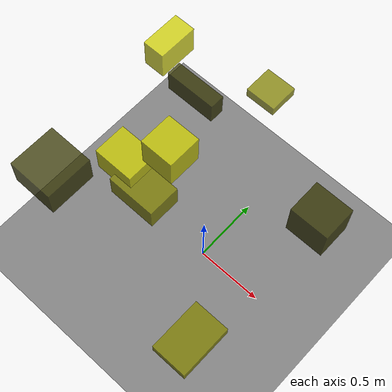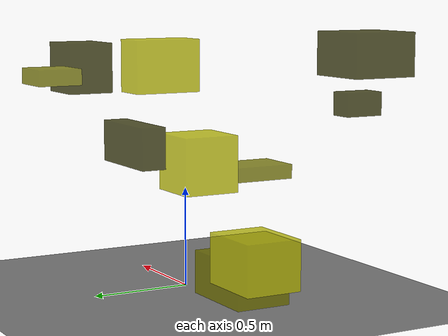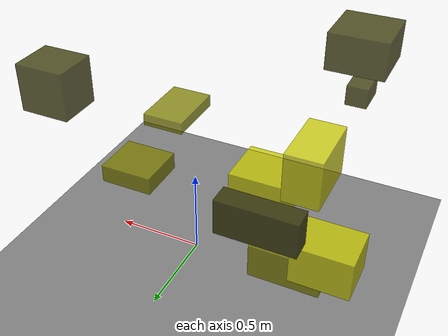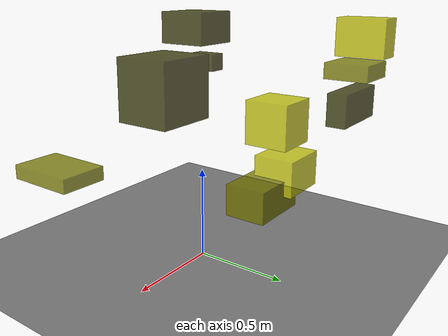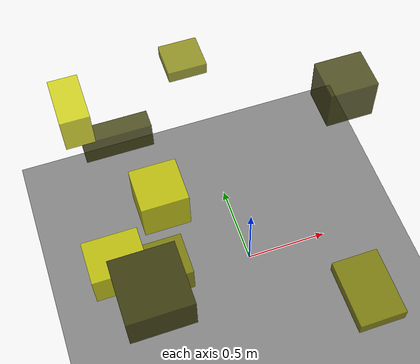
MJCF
<?xml version="1.0"?>
<mujoco model="obstacle_scene">
  <compiler angle="radian" coordinate="local"/>
  <option timestep="0.001" gravity="0 0 -9.81"/>

  <asset>
    <material name="obstacle_mat" rgba="0.8 0.8 0.0 0.8"/>
    <material name="ground_mat" rgba="0.5 0.5 0.5 1"/>
  </asset>

  <worldbody>
    <!-- Ground plane -->
    <geom name="ground" type="plane" size="3 3 0.1" material="ground_mat"/>

    <!-- Obstacles -->
    <body name="obstacle_0" pos="-0.735191 -0.526706 0.964531">
      <geom name="obs_0" type="box" size="0.059012 0.095000 0.055887" rgba="0.2 0.2 0.0 0.8"/>
    </body>
    <body name="obstacle_1" pos="-0.598659 0.021073 0.167707">
      <geom name="obs_1" type="box" size="0.205327 0.134493 0.103502" rgba="0.5 0.5 0.0 0.8"/>
    </body>
    <body name="obstacle_2" pos="-0.480277 0.181982 0.702692">
      <geom name="obs_2" type="box" size="0.134125 0.133673 0.132289" rgba="0.8 0.8 0.0 0.8"/>
    </body>
    <body name="obstacle_3" pos="-0.612947 0.570923 0.827597">
      <geom name="obs_3" type="box" size="0.197257 0.054937 0.091033" rgba="0.2 0.2 0.0 0.8"/>
    </body>
    <body name="obstacle_4" pos="0.457207 -0.634656 0.480450">
      <geom name="obs_4" type="box" size="0.135459 0.200829 0.039955" rgba="0.5 0.5 0.0 0.8"/>
    </body>
    <body name="obstacle_5" pos="-0.809882 0.072408 0.287627">
      <geom name="obs_5" type="box" size="0.169137 0.136189 0.117770" rgba="0.8 0.8 0.0 0.8"/>
    </body>
    <body name="obstacle_6" pos="-0.707960 -0.588188 1.193767">
      <geom name="obs_6" type="box" size="0.161394 0.164851 0.104636" rgba="0.2 0.2 0.0 0.8"/>
    </body>
    <body name="obstacle_7" pos="-0.147437 0.765375 1.100220">
      <geom name="obs_7" type="box" size="0.109360 0.102911 0.037113" rgba="0.5 0.5 0.0 0.8"/>
    </body>
    <body name="obstacle_8" pos="-0.821476 0.544054 1.182728">
      <geom name="obs_8" type="box" size="0.079400 0.144721 0.110756" rgba="0.8 0.8 0.0 0.8"/>
    </body>
    <body name="obstacle_9" pos="0.632105 0.291409 1.079495">
      <geom name="obs_9" type="box" size="0.135338 0.120044 0.130794" rgba="0.2 0.2 0.0 0.8"/>
    </body>
  </worldbody>
</mujoco>
